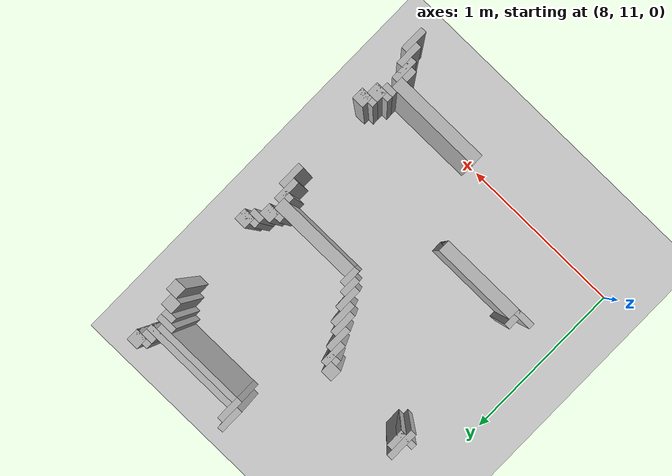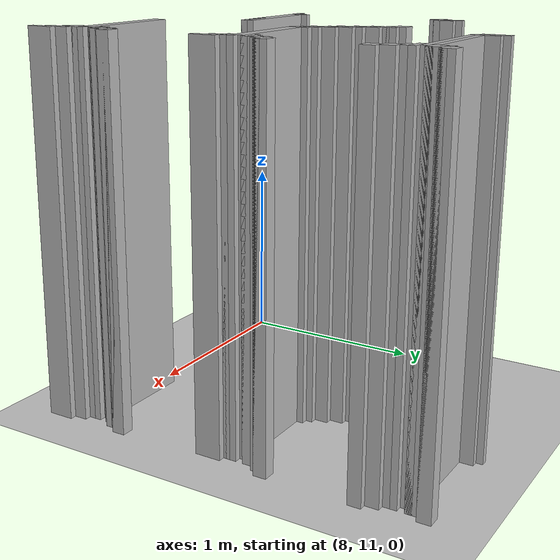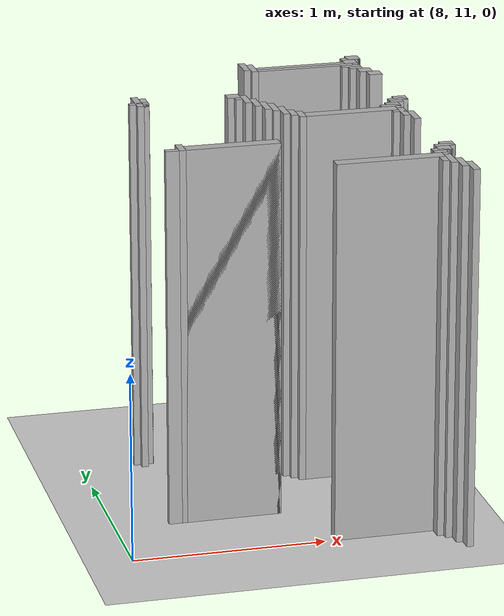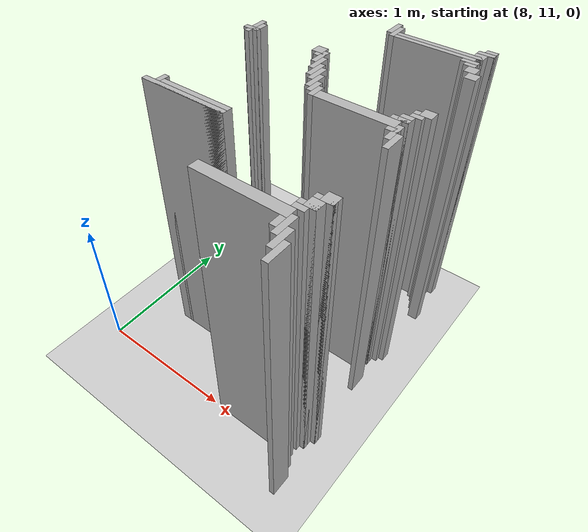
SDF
<sdf version="1.6">
 <world name="slam_world">
  <model name="ground_plane">
   <static>true</static>
   <link name="link">
    <collision name="collision">
     <geometry><plane><normal>0 0 1</normal><size>100 100</size></plane></geometry>
    </collision>
    <visual name="visual">
     <geometry><plane><normal>0 0 1</normal><size>100 100</size></plane></geometry>
     <material>
      <ambient>0.8 0.8 0.8 1</ambient>
      <diffuse>0.8 0.8 0.8 1</diffuse>
      <specular>0.8 0.8 0.8 1</specular>
     </material>
    </visual>
   </link>
  </model>
  <model name="wall_1474">
   <static>true</static>
   <pose>9.031322505800464 12.807424593967516 1.0 0 0 0</pose>
   <link name="link">
    <collision name="collision">
     <geometry><box><size>0.03480278422273782 0.13921113689095127 2.0</size></box></geometry>
    </collision>
    <visual name="visual">
     <geometry><box><size>0.03480278422273782 0.13921113689095127 2.0</size></box></geometry>
     <material><ambient>0.5 0.5 0.5 1</ambient><diffuse>0.7 0.7 0.7 1</diffuse></material>
    </visual>
   </link>
  </model>
  <model name="wall_1475">
   <static>true</static>
   <pose>9.640371229698376 12.842227378190255 1.0 0 0 0</pose>
   <link name="link">
    <collision name="collision">
     <geometry><box><size>0.06960556844547564 0.06960556844547564 2.0</size></box></geometry>
    </collision>
    <visual name="visual">
     <geometry><box><size>0.06960556844547564 0.06960556844547564 2.0</size></box></geometry>
     <material><ambient>0.5 0.5 0.5 1</ambient><diffuse>0.7 0.7 0.7 1</diffuse></material>
    </visual>
   </link>
  </model>
  <model name="wall_1489">
   <static>true</static>
   <pose>9.066125290023201 12.772621809744779 1.0 0 0 0</pose>
   <link name="link">
    <collision name="collision">
     <geometry><box><size>0.03480278422273782 0.13921113689095127 2.0</size></box></geometry>
    </collision>
    <visual name="visual">
     <geometry><box><size>0.03480278422273782 0.13921113689095127 2.0</size></box></geometry>
     <material><ambient>0.5 0.5 0.5 1</ambient><diffuse>0.7 0.7 0.7 1</diffuse></material>
    </visual>
   </link>
  </model>
  <model name="wall_1490">
   <static>true</static>
   <pose>9.622969837587007 12.824825986078885 1.0 0 0 0</pose>
   <link name="link">
    <collision name="collision">
     <geometry><box><size>0.10440835266821345 0.03480278422273782 2.0</size></box></geometry>
    </collision>
    <visual name="visual">
     <geometry><box><size>0.10440835266821345 0.03480278422273782 2.0</size></box></geometry>
     <material><ambient>0.5 0.5 0.5 1</ambient><diffuse>0.7 0.7 0.7 1</diffuse></material>
    </visual>
   </link>
  </model>
  <model name="wall_1502">
   <static>true</static>
   <pose>9.605568445475638 12.772621809744779 1.0 0 0 0</pose>
   <link name="link">
    <collision name="collision">
     <geometry><box><size>0.06960556844547564 0.06960556844547564 2.0</size></box></geometry>
    </collision>
    <visual name="visual">
     <geometry><box><size>0.06960556844547564 0.06960556844547564 2.0</size></box></geometry>
     <material><ambient>0.5 0.5 0.5 1</ambient><diffuse>0.7 0.7 0.7 1</diffuse></material>
    </visual>
   </link>
  </model>
  <model name="wall_1513">
   <static>true</static>
   <pose>9.361948955916473 12.75522041763341 1.0 0 0 0</pose>
   <link name="link">
    <collision name="collision">
     <geometry><box><size>0.5568445475638051 0.03480278422273782 2.0</size></box></geometry>
    </collision>
    <visual name="visual">
     <geometry><box><size>0.5568445475638051 0.03480278422273782 2.0</size></box></geometry>
     <material><ambient>0.5 0.5 0.5 1</ambient><diffuse>0.7 0.7 0.7 1</diffuse></material>
    </visual>
   </link>
  </model>
  <model name="wall_1526">
   <static>true</static>
   <pose>9.344547563805104 12.720417633410673 1.0 0 0 0</pose>
   <link name="link">
    <collision name="collision">
     <geometry><box><size>0.5220417633410672 0.03480278422273782 2.0</size></box></geometry>
    </collision>
    <visual name="visual">
     <geometry><box><size>0.5220417633410672 0.03480278422273782 2.0</size></box></geometry>
     <material><ambient>0.5 0.5 0.5 1</ambient><diffuse>0.7 0.7 0.7 1</diffuse></material>
    </visual>
   </link>
  </model>
  <model name="wall_1538">
   <static>true</static>
   <pose>9.588167053364268 12.685614849187935 1.0 0 0 0</pose>
   <link name="link">
    <collision name="collision">
     <geometry><box><size>0.10440835266821345 0.03480278422273782 2.0</size></box></geometry>
    </collision>
    <visual name="visual">
     <geometry><box><size>0.10440835266821345 0.03480278422273782 2.0</size></box></geometry>
     <material><ambient>0.5 0.5 0.5 1</ambient><diffuse>0.7 0.7 0.7 1</diffuse></material>
    </visual>
   </link>
  </model>
  <model name="wall_1551">
   <static>true</static>
   <pose>9.605568445475638 12.650812064965196 1.0 0 0 0</pose>
   <link name="link">
    <collision name="collision">
     <geometry><box><size>0.06960556844547564 0.03480278422273782 2.0</size></box></geometry>
    </collision>
    <visual name="visual">
     <geometry><box><size>0.06960556844547564 0.03480278422273782 2.0</size></box></geometry>
     <material><ambient>0.5 0.5 0.5 1</ambient><diffuse>0.7 0.7 0.7 1</diffuse></material>
    </visual>
   </link>
  </model>
  <model name="wall_1563">
   <static>true</static>
   <pose>9.640371229698376 12.59860788863109 1.0 0 0 0</pose>
   <link name="link">
    <collision name="collision">
     <geometry><box><size>0.06960556844547564 0.06960556844547564 2.0</size></box></geometry>
    </collision>
    <visual name="visual">
     <geometry><box><size>0.06960556844547564 0.06960556844547564 2.0</size></box></geometry>
     <material><ambient>0.5 0.5 0.5 1</ambient><diffuse>0.7 0.7 0.7 1</diffuse></material>
    </visual>
   </link>
  </model>
  <model name="wall_1588">
   <static>true</static>
   <pose>9.675174013921113 12.529002320185615 1.0 0 0 0</pose>
   <link name="link">
    <collision name="collision">
     <geometry><box><size>0.06960556844547564 0.06960556844547564 2.0</size></box></geometry>
    </collision>
    <visual name="visual">
     <geometry><box><size>0.06960556844547564 0.06960556844547564 2.0</size></box></geometry>
     <material><ambient>0.5 0.5 0.5 1</ambient><diffuse>0.7 0.7 0.7 1</diffuse></material>
    </visual>
   </link>
  </model>
  <model name="wall_1632">
   <static>true</static>
   <pose>8.335266821345707 12.302784222737818 1.0 0 0 0</pose>
   <link name="link">
    <collision name="collision">
     <geometry><box><size>0.03480278422273782 0.17401392111368907 2.0</size></box></geometry>
    </collision>
    <visual name="visual">
     <geometry><box><size>0.03480278422273782 0.17401392111368907 2.0</size></box></geometry>
     <material><ambient>0.5 0.5 0.5 1</ambient><diffuse>0.7 0.7 0.7 1</diffuse></material>
    </visual>
   </link>
  </model>
  <model name="wall_1645">
   <static>true</static>
   <pose>8.370069605568444 12.302784222737818 1.0 0 0 0</pose>
   <link name="link">
    <collision name="collision">
     <geometry><box><size>0.03480278422273782 0.10440835266821345 2.0</size></box></geometry>
    </collision>
    <visual name="visual">
     <geometry><box><size>0.03480278422273782 0.10440835266821345 2.0</size></box></geometry>
     <material><ambient>0.5 0.5 0.5 1</ambient><diffuse>0.7 0.7 0.7 1</diffuse></material>
    </visual>
   </link>
  </model>
  <model name="wall_1656">
   <static>true</static>
   <pose>8.839907192575406 12.28538283062645 1.0 0 0 0</pose>
   <link name="link">
    <collision name="collision">
     <geometry><box><size>0.06960556844547564 0.06960556844547564 2.0</size></box></geometry>
    </collision>
    <visual name="visual">
     <geometry><box><size>0.06960556844547564 0.06960556844547564 2.0</size></box></geometry>
     <material><ambient>0.5 0.5 0.5 1</ambient><diffuse>0.7 0.7 0.7 1</diffuse></material>
    </visual>
   </link>
  </model>
  <model name="wall_1671">
   <static>true</static>
   <pose>8.335266821345707 12.267981438515081 1.0 0 0 0</pose>
   <link name="link">
    <collision name="collision">
     <geometry><box><size>0.10440835266821345 0.03480278422273782 2.0</size></box></geometry>
    </collision>
    <visual name="visual">
     <geometry><box><size>0.10440835266821345 0.03480278422273782 2.0</size></box></geometry>
     <material><ambient>0.5 0.5 0.5 1</ambient><diffuse>0.7 0.7 0.7 1</diffuse></material>
    </visual>
   </link>
  </model>
  <model name="wall_1672">
   <static>true</static>
   <pose>8.892111368909513 12.215777262180975 1.0 0 0 0</pose>
   <link name="link">
    <collision name="collision">
     <geometry><box><size>0.03480278422273782 0.13921113689095127 2.0</size></box></geometry>
    </collision>
    <visual name="visual">
     <geometry><box><size>0.03480278422273782 0.13921113689095127 2.0</size></box></geometry>
     <material><ambient>0.5 0.5 0.5 1</ambient><diffuse>0.7 0.7 0.7 1</diffuse></material>
    </visual>
   </link>
  </model>
  <model name="wall_1688">
   <static>true</static>
   <pose>8.874709976798144 12.233178654292344 1.0 0 0 0</pose>
   <link name="link">
    <collision name="collision">
     <geometry><box><size>0.06960556844547564 0.03480278422273782 2.0</size></box></geometry>
    </collision>
    <visual name="visual">
     <geometry><box><size>0.06960556844547564 0.03480278422273782 2.0</size></box></geometry>
     <material><ambient>0.5 0.5 0.5 1</ambient><diffuse>0.7 0.7 0.7 1</diffuse></material>
    </visual>
   </link>
  </model>
  <model name="wall_1702">
   <static>true</static>
   <pose>8.92691415313225 12.146171693735498 1.0 0 0 0</pose>
   <link name="link">
    <collision name="collision">
     <geometry><box><size>0.03480278422273782 0.13921113689095127 2.0</size></box></geometry>
    </collision>
    <visual name="visual">
     <geometry><box><size>0.03480278422273782 0.13921113689095127 2.0</size></box></geometry>
     <material><ambient>0.5 0.5 0.5 1</ambient><diffuse>0.7 0.7 0.7 1</diffuse></material>
    </visual>
   </link>
  </model>
  <model name="wall_1716">
   <static>true</static>
   <pose>8.961716937354987 12.076566125290023 1.0 0 0 0</pose>
   <link name="link">
    <collision name="collision">
     <geometry><box><size>0.03480278422273782 0.13921113689095127 2.0</size></box></geometry>
    </collision>
    <visual name="visual">
     <geometry><box><size>0.03480278422273782 0.13921113689095127 2.0</size></box></geometry>
     <material><ambient>0.5 0.5 0.5 1</ambient><diffuse>0.7 0.7 0.7 1</diffuse></material>
    </visual>
   </link>
  </model>
  <model name="wall_1730">
   <static>true</static>
   <pose>8.996519721577727 12.041763341067284 1.0 0 0 0</pose>
   <link name="link">
    <collision name="collision">
     <geometry><box><size>0.03480278422273782 0.13921113689095127 2.0</size></box></geometry>
    </collision>
    <visual name="visual">
     <geometry><box><size>0.03480278422273782 0.13921113689095127 2.0</size></box></geometry>
     <material><ambient>0.5 0.5 0.5 1</ambient><diffuse>0.7 0.7 0.7 1</diffuse></material>
    </visual>
   </link>
  </model>
  <model name="wall_1743">
   <static>true</static>
   <pose>9.675174013921113 12.041763341067284 1.0 0 0 0</pose>
   <link name="link">
    <collision name="collision">
     <geometry><box><size>0.06960556844547564 0.06960556844547564 2.0</size></box></geometry>
    </collision>
    <visual name="visual">
     <geometry><box><size>0.06960556844547564 0.06960556844547564 2.0</size></box></geometry>
     <material><ambient>0.5 0.5 0.5 1</ambient><diffuse>0.7 0.7 0.7 1</diffuse></material>
    </visual>
   </link>
  </model>
  <model name="wall_1754">
   <static>true</static>
   <pose>9.031322505800464 11.97215777262181 1.0 0 0 0</pose>
   <link name="link">
    <collision name="collision">
     <geometry><box><size>0.03480278422273782 0.13921113689095127 2.0</size></box></geometry>
    </collision>
    <visual name="visual">
     <geometry><box><size>0.03480278422273782 0.13921113689095127 2.0</size></box></geometry>
     <material><ambient>0.5 0.5 0.5 1</ambient><diffuse>0.7 0.7 0.7 1</diffuse></material>
    </visual>
   </link>
  </model>
  <model name="wall_1755">
   <static>true</static>
   <pose>9.657772621809745 12.024361948955915 1.0 0 0 0</pose>
   <link name="link">
    <collision name="collision">
     <geometry><box><size>0.10440835266821345 0.03480278422273782 2.0</size></box></geometry>
    </collision>
    <visual name="visual">
     <geometry><box><size>0.10440835266821345 0.03480278422273782 2.0</size></box></geometry>
     <material><ambient>0.5 0.5 0.5 1</ambient><diffuse>0.7 0.7 0.7 1</diffuse></material>
    </visual>
   </link>
  </model>
  <model name="wall_1766">
   <static>true</static>
   <pose>9.640371229698376 11.989559164733178 1.0 0 0 0</pose>
   <link name="link">
    <collision name="collision">
     <geometry><box><size>0.06960556844547564 0.03480278422273782 2.0</size></box></geometry>
    </collision>
    <visual name="visual">
     <geometry><box><size>0.06960556844547564 0.03480278422273782 2.0</size></box></geometry>
     <material><ambient>0.5 0.5 0.5 1</ambient><diffuse>0.7 0.7 0.7 1</diffuse></material>
    </visual>
   </link>
  </model>
  <model name="wall_1776">
   <static>true</static>
   <pose>9.066125290023201 11.919953596287703 1.0 0 0 0</pose>
   <link name="link">
    <collision name="collision">
     <geometry><box><size>0.03480278422273782 0.10440835266821345 2.0</size></box></geometry>
    </collision>
    <visual name="visual">
     <geometry><box><size>0.03480278422273782 0.10440835266821345 2.0</size></box></geometry>
     <material><ambient>0.5 0.5 0.5 1</ambient><diffuse>0.7 0.7 0.7 1</diffuse></material>
    </visual>
   </link>
  </model>
  <model name="wall_1777">
   <static>true</static>
   <pose>9.605568445475638 11.937354988399072 1.0 0 0 0</pose>
   <link name="link">
    <collision name="collision">
     <geometry><box><size>0.06960556844547564 0.06960556844547564 2.0</size></box></geometry>
    </collision>
    <visual name="visual">
     <geometry><box><size>0.06960556844547564 0.06960556844547564 2.0</size></box></geometry>
     <material><ambient>0.5 0.5 0.5 1</ambient><diffuse>0.7 0.7 0.7 1</diffuse></material>
    </visual>
   </link>
  </model>
  <model name="wall_1790">
   <static>true</static>
   <pose>9.100928074245939 11.885150812064964 1.0 0 0 0</pose>
   <link name="link">
    <collision name="collision">
     <geometry><box><size>0.03480278422273782 0.10440835266821345 2.0</size></box></geometry>
    </collision>
    <visual name="visual">
     <geometry><box><size>0.03480278422273782 0.10440835266821345 2.0</size></box></geometry>
     <material><ambient>0.5 0.5 0.5 1</ambient><diffuse>0.7 0.7 0.7 1</diffuse></material>
    </visual>
   </link>
  </model>
  <model name="wall_1791">
   <static>true</static>
   <pose>9.588167053364268 11.919953596287703 1.0 0 0 0</pose>
   <link name="link">
    <collision name="collision">
     <geometry><box><size>0.10440835266821345 0.03480278422273782 2.0</size></box></geometry>
    </collision>
    <visual name="visual">
     <geometry><box><size>0.10440835266821345 0.03480278422273782 2.0</size></box></geometry>
     <material><ambient>0.5 0.5 0.5 1</ambient><diffuse>0.7 0.7 0.7 1</diffuse></material>
    </visual>
   </link>
  </model>
  <model name="wall_1804">
   <static>true</static>
   <pose>9.361948955916473 11.867749419953595 1.0 0 0 0</pose>
   <link name="link">
    <collision name="collision">
     <geometry><box><size>0.4872389791183295 0.06960556844547564 2.0</size></box></geometry>
    </collision>
    <visual name="visual">
     <geometry><box><size>0.4872389791183295 0.06960556844547564 2.0</size></box></geometry>
     <material><ambient>0.5 0.5 0.5 1</ambient><diffuse>0.7 0.7 0.7 1</diffuse></material>
    </visual>
   </link>
  </model>
  <model name="wall_1816">
   <static>true</static>
   <pose>9.622969837587007 11.79814385150812 1.0 0 0 0</pose>
   <link name="link">
    <collision name="collision">
     <geometry><box><size>0.03480278422273782 0.13921113689095127 2.0</size></box></geometry>
    </collision>
    <visual name="visual">
     <geometry><box><size>0.03480278422273782 0.13921113689095127 2.0</size></box></geometry>
     <material><ambient>0.5 0.5 0.5 1</ambient><diffuse>0.7 0.7 0.7 1</diffuse></material>
    </visual>
   </link>
  </model>
  <model name="wall_1829">
   <static>true</static>
   <pose>9.605568445475638 11.81554524361949 1.0 0 0 0</pose>
   <link name="link">
    <collision name="collision">
     <geometry><box><size>0.06960556844547564 0.03480278422273782 2.0</size></box></geometry>
    </collision>
    <visual name="visual">
     <geometry><box><size>0.06960556844547564 0.03480278422273782 2.0</size></box></geometry>
     <material><ambient>0.5 0.5 0.5 1</ambient><diffuse>0.7 0.7 0.7 1</diffuse></material>
    </visual>
   </link>
  </model>
  <model name="wall_1843">
   <static>true</static>
   <pose>9.657772621809745 11.728538283062644 1.0 0 0 0</pose>
   <link name="link">
    <collision name="collision">
     <geometry><box><size>0.03480278422273782 0.13921113689095127 2.0</size></box></geometry>
    </collision>
    <visual name="visual">
     <geometry><box><size>0.03480278422273782 0.13921113689095127 2.0</size></box></geometry>
     <material><ambient>0.5 0.5 0.5 1</ambient><diffuse>0.7 0.7 0.7 1</diffuse></material>
    </visual>
   </link>
  </model>
  <model name="wall_1926">
   <static>true</static>
   <pose>8.370069605568444 11.467517401392112 1.0 0 0 0</pose>
   <link name="link">
    <collision name="collision">
     <geometry><box><size>0.03480278422273782 0.10440835266821345 2.0</size></box></geometry>
    </collision>
    <visual name="visual">
     <geometry><box><size>0.03480278422273782 0.10440835266821345 2.0</size></box></geometry>
     <material><ambient>0.5 0.5 0.5 1</ambient><diffuse>0.7 0.7 0.7 1</diffuse></material>
    </visual>
   </link>
  </model>
  <model name="wall_1939">
   <static>true</static>
   <pose>8.631090487238978 11.450116009280743 1.0 0 0 0</pose>
   <link name="link">
    <collision name="collision">
     <geometry><box><size>0.4872389791183295 0.06960556844547564 2.0</size></box></geometry>
    </collision>
    <visual name="visual">
     <geometry><box><size>0.4872389791183295 0.06960556844547564 2.0</size></box></geometry>
     <material><ambient>0.5 0.5 0.5 1</ambient><diffuse>0.7 0.7 0.7 1</diffuse></material>
    </visual>
   </link>
  </model>
  <model name="wall_1951">
   <static>true</static>
   <pose>8.578886310904872 11.432714617169372 1.0 0 0 0</pose>
   <link name="link">
    <collision name="collision">
     <geometry><box><size>0.5916473317865429 0.03480278422273782 2.0</size></box></geometry>
    </collision>
    <visual name="visual">
     <geometry><box><size>0.5916473317865429 0.03480278422273782 2.0</size></box></geometry>
     <material><ambient>0.5 0.5 0.5 1</ambient><diffuse>0.7 0.7 0.7 1</diffuse></material>
    </visual>
   </link>
  </model>
  <model name="wall_2031">
   <static>true</static>
   <pose>9.675174013921113 11.206496519721577 1.0 0 0 0</pose>
   <link name="link">
    <collision name="collision">
     <geometry><box><size>0.06960556844547564 0.06960556844547564 2.0</size></box></geometry>
    </collision>
    <visual name="visual">
     <geometry><box><size>0.06960556844547564 0.06960556844547564 2.0</size></box></geometry>
     <material><ambient>0.5 0.5 0.5 1</ambient><diffuse>0.7 0.7 0.7 1</diffuse></material>
    </visual>
   </link>
  </model>
  <model name="wall_2048">
   <static>true</static>
   <pose>9.657772621809745 11.189095127610209 1.0 0 0 0</pose>
   <link name="link">
    <collision name="collision">
     <geometry><box><size>0.10440835266821345 0.03480278422273782 2.0</size></box></geometry>
    </collision>
    <visual name="visual">
     <geometry><box><size>0.10440835266821345 0.03480278422273782 2.0</size></box></geometry>
     <material><ambient>0.5 0.5 0.5 1</ambient><diffuse>0.7 0.7 0.7 1</diffuse></material>
    </visual>
   </link>
  </model>
  <model name="wall_2060">
   <static>true</static>
   <pose>9.640371229698376 11.1368909512761 1.0 0 0 0</pose>
   <link name="link">
    <collision name="collision">
     <geometry><box><size>0.06960556844547564 0.06960556844547564 2.0</size></box></geometry>
    </collision>
    <visual name="visual">
     <geometry><box><size>0.06960556844547564 0.06960556844547564 2.0</size></box></geometry>
     <material><ambient>0.5 0.5 0.5 1</ambient><diffuse>0.7 0.7 0.7 1</diffuse></material>
    </visual>
   </link>
  </model>
  <model name="wall_2074">
   <static>true</static>
   <pose>9.622969837587007 11.119489559164732 1.0 0 0 0</pose>
   <link name="link">
    <collision name="collision">
     <geometry><box><size>0.10440835266821345 0.03480278422273782 2.0</size></box></geometry>
    </collision>
    <visual name="visual">
     <geometry><box><size>0.10440835266821345 0.03480278422273782 2.0</size></box></geometry>
     <material><ambient>0.5 0.5 0.5 1</ambient><diffuse>0.7 0.7 0.7 1</diffuse></material>
    </visual>
   </link>
  </model>
  <model name="wall_2086">
   <static>true</static>
   <pose>9.605568445475638 11.084686774941995 1.0 0 0 0</pose>
   <link name="link">
    <collision name="collision">
     <geometry><box><size>0.06960556844547564 0.03480278422273782 2.0</size></box></geometry>
    </collision>
    <visual name="visual">
     <geometry><box><size>0.06960556844547564 0.03480278422273782 2.0</size></box></geometry>
     <material><ambient>0.5 0.5 0.5 1</ambient><diffuse>0.7 0.7 0.7 1</diffuse></material>
    </visual>
   </link>
  </model>
  <model name="wall_2097">
   <static>true</static>
   <pose>9.327146171693736 11.032482598607888 1.0 0 0 0</pose>
   <link name="link">
    <collision name="collision">
     <geometry><box><size>0.5568445475638051 0.06960556844547564 2.0</size></box></geometry>
    </collision>
    <visual name="visual">
     <geometry><box><size>0.5568445475638051 0.06960556844547564 2.0</size></box></geometry>
     <material><ambient>0.5 0.5 0.5 1</ambient><diffuse>0.7 0.7 0.7 1</diffuse></material>
    </visual>
   </link>
  </model>
  <model name="wall_2108">
   <static>true</static>
   <pose>9.622969837587007 10.962877030162412 1.0 0 0 0</pose>
   <link name="link">
    <collision name="collision">
     <geometry><box><size>0.03480278422273782 0.13921113689095127 2.0</size></box></geometry>
    </collision>
    <visual name="visual">
     <geometry><box><size>0.03480278422273782 0.13921113689095127 2.0</size></box></geometry>
     <material><ambient>0.5 0.5 0.5 1</ambient><diffuse>0.7 0.7 0.7 1</diffuse></material>
    </visual>
   </link>
  </model>
  <model name="wall_2120">
   <static>true</static>
   <pose>9.605568445475638 10.962877030162412 1.0 0 0 0</pose>
   <link name="link">
    <collision name="collision">
     <geometry><box><size>0.06960556844547564 0.06960556844547564 2.0</size></box></geometry>
    </collision>
    <visual name="visual">
     <geometry><box><size>0.06960556844547564 0.06960556844547564 2.0</size></box></geometry>
     <material><ambient>0.5 0.5 0.5 1</ambient><diffuse>0.7 0.7 0.7 1</diffuse></material>
    </visual>
   </link>
  </model>
  <model name="wall_2133">
   <static>true</static>
   <pose>9.657772621809745 10.893271461716937 1.0 0 0 0</pose>
   <link name="link">
    <collision name="collision">
     <geometry><box><size>0.03480278422273782 0.13921113689095127 2.0</size></box></geometry>
    </collision>
    <visual name="visual">
     <geometry><box><size>0.03480278422273782 0.13921113689095127 2.0</size></box></geometry>
     <material><ambient>0.5 0.5 0.5 1</ambient><diffuse>0.7 0.7 0.7 1</diffuse></material>
    </visual>
   </link>
  </model>
  <model name="wall_2156">
   <static>true</static>
   <pose>9.692575406032482 10.82366589327146 1.0 0 0 0</pose>
   <link name="link">
    <collision name="collision">
     <geometry><box><size>0.03480278422273782 0.13921113689095127 2.0</size></box></geometry>
    </collision>
    <visual name="visual">
     <geometry><box><size>0.03480278422273782 0.13921113689095127 2.0</size></box></geometry>
     <material><ambient>0.5 0.5 0.5 1</ambient><diffuse>0.7 0.7 0.7 1</diffuse></material>
    </visual>
   </link>
  </model>
 </world>
</sdf>
